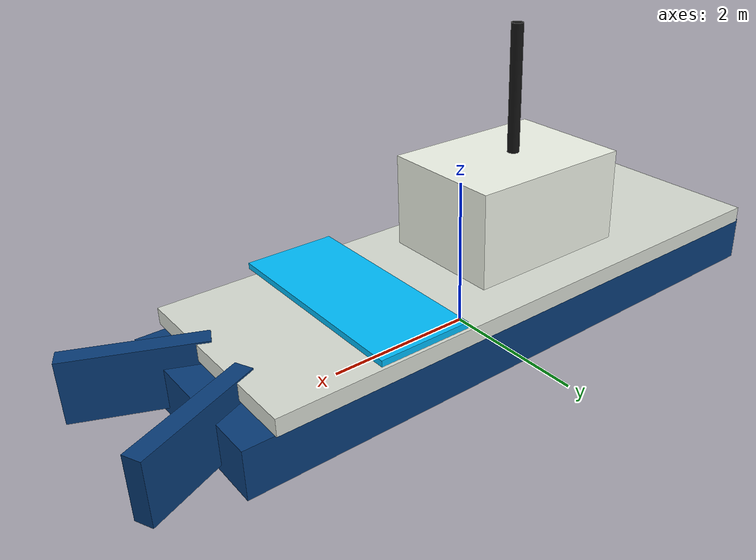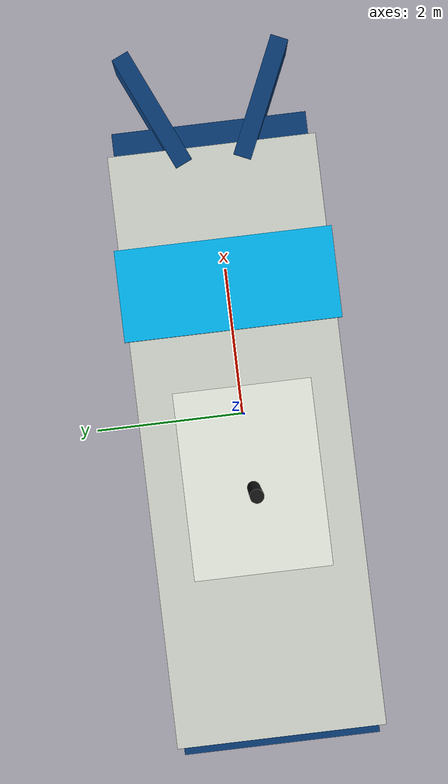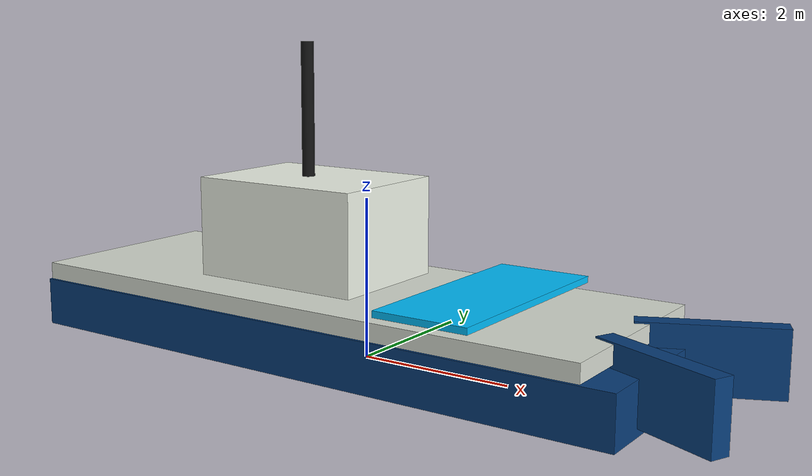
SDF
<?xml version="1.0"?>
<sdf version="1.8">
  <model name="fleet_boat_blue">
    <pose>0 0 0.58 0 0 0</pose>
    <link name="hull">
      <inertial>
        <mass>260</mass>
        <inertia>
          <ixx>180</ixx>
          <iyy>620</iyy>
          <izz>720</izz>
        </inertia>
      </inertial>
      <collision name="hull_collision">
        <pose>0 0 0 0 0 0</pose>
        <geometry>
          <box>
            <size>8.6 3.0 1.0</size>
          </box>
        </geometry>
      </collision>
      <visual name="lower_hull">
        <pose>-0.25 0 -0.24 0 0 0</pose>
        <geometry>
          <box>
            <size>8.3 2.6 0.62</size>
          </box>
        </geometry>
        <material>
          <ambient>0.02 0.12 0.22 1</ambient>
          <diffuse>0.03 0.24 0.48 1</diffuse>
          <specular>0.16 0.24 0.3 1</specular>
        </material>
      </visual>
      <visual name="deck">
        <pose>-0.35 0 0.22 0 0 0</pose>
        <geometry>
          <box>
            <size>7.8 2.75 0.22</size>
          </box>
        </geometry>
        <material>
          <ambient>0.72 0.74 0.72 1</ambient>
          <diffuse>0.86 0.88 0.84 1</diffuse>
        </material>
      </visual>
      <visual name="bow_left">
        <pose>4.1 0.72 -0.05 0 0 0.42</pose>
        <geometry>
          <box>
            <size>1.65 0.24 0.8</size>
          </box>
        </geometry>
        <material>
          <ambient>0.02 0.12 0.22 1</ambient>
          <diffuse>0.03 0.24 0.48 1</diffuse>
        </material>
      </visual>
      <visual name="bow_right">
        <pose>4.1 -0.72 -0.05 0 0 -0.42</pose>
        <geometry>
          <box>
            <size>1.65 0.24 0.8</size>
          </box>
        </geometry>
        <material>
          <ambient>0.02 0.12 0.22 1</ambient>
          <diffuse>0.03 0.24 0.48 1</diffuse>
        </material>
      </visual>
      <visual name="cabin">
        <pose>-0.8 0 1.0 0 0 0</pose>
        <geometry>
          <box>
            <size>2.3 1.7 1.25</size>
          </box>
        </geometry>
        <material>
          <ambient>0.88 0.9 0.86 1</ambient>
          <diffuse>0.96 0.98 0.93 1</diffuse>
        </material>
      </visual>
      <visual name="sensor_mast">
        <pose>-0.9 0 2.2 0 0 0</pose>
        <geometry>
          <cylinder>
            <radius>0.08</radius>
            <length>2.2</length>
          </cylinder>
        </geometry>
        <material>
          <ambient>0.05 0.05 0.05 1</ambient>
          <diffuse>0.08 0.08 0.08 1</diffuse>
        </material>
      </visual>
      <visual name="id_band">
        <pose>1.7 0 0.45 0 0 0</pose>
        <geometry>
          <box>
            <size>1.2 2.85 0.08</size>
          </box>
        </geometry>
        <material>
          <ambient>0.0 0.65 1.0 1</ambient>
          <diffuse>0.0 0.75 1.0 1</diffuse>
        </material>
      </visual>
    </link>
    <plugin
      filename="libBoatWaveFollower.so"
      name="gz::sim::systems::BoatWaveFollower">
      <mean_z>0.58</mean_z>
      <heave_amplitude>0.07</heave_amplitude>
      <roll_amplitude>0.026</roll_amplitude>
      <pitch_amplitude>0.022</pitch_amplitude>
      <primary_frequency>0.9</primary_frequency>
      <secondary_frequency>1.45</secondary_frequency>
      <wave_number_x>0.3</wave_number_x>
      <wave_number_y>0.18</wave_number_y>
    </plugin>
  </model>
</sdf>
